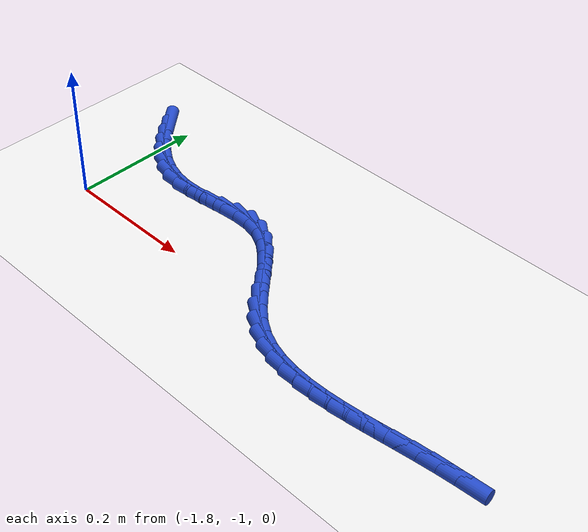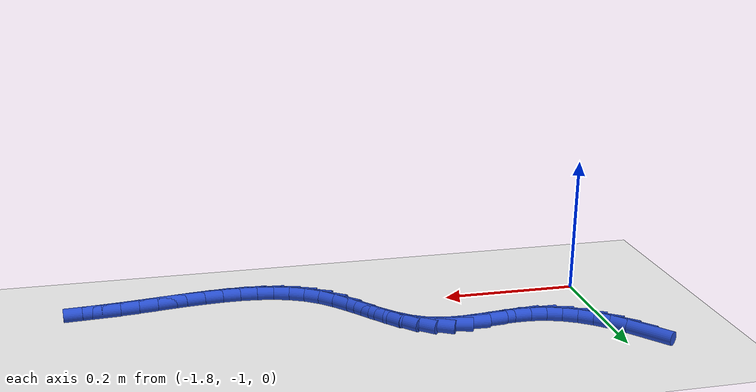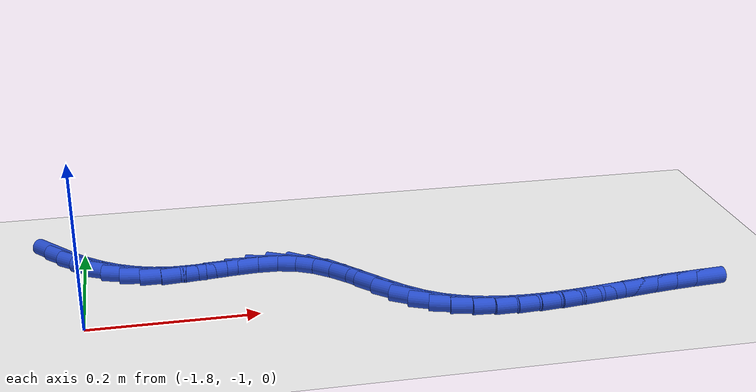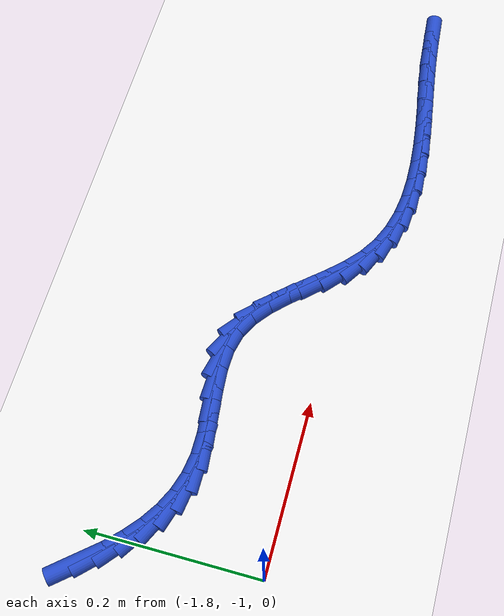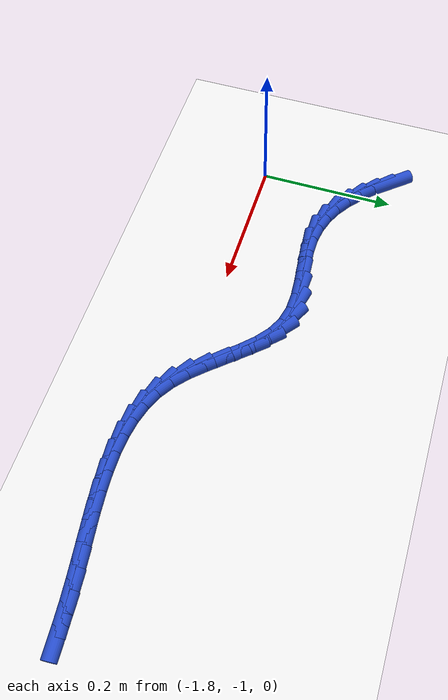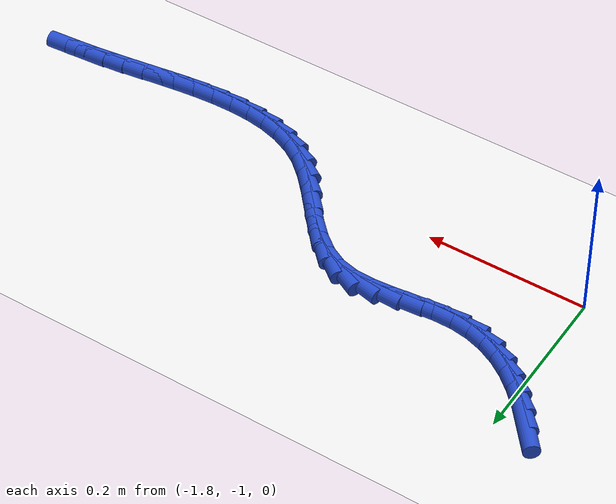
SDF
<sdf version="1.6">
 <world name="default">
  <model name="ground_plane">
   <static>1</static>
   <link name="link">
    <collision name="collision">
     <geometry><plane><normal>0 0 1</normal><size>100 100</size></plane></geometry>
     <surface><friction><ode><mu>100</mu><mu2>50</mu2></ode></friction></surface>
    </collision>
    <visual name="visual">
     <cast_shadows>0</cast_shadows>
     <geometry><plane><normal>0 0 1</normal><size>100 100</size></plane></geometry>
     <material>
      <script><uri>file://media/materials/scripts/gazebo.material</uri><name>Gazebo/WhiteGlow</name></script>
     </material>
    </visual>
   </link>
  </model>
  <model name="line">
   <link name="link_169">
    <pose>-1.8310161625493722 -0.8116855752897663 0.01 0 1.57 -0.8751986220896968</pose>
    <collision name="collision">
     <geometry><cylinder><radius>0.01</radius><length>0.08</length></cylinder></geometry>
    </collision>
    <visual name="visual">
     <material>
      <script><name>Gazebo/Blue</name><uri>file://media/materials/scripts/gazebo.material</uri></script>
     </material>
     <geometry><cylinder><radius>0.01</radius><length>0.08</length></cylinder></geometry>
    </visual>
   </link>
   <link name="link_170">
    <pose>-1.8146421535079265 -0.8313000851181753 0.01 0 1.57 -0.7985323248890216</pose>
    <collision name="collision">
     <geometry><cylinder><radius>0.01</radius><length>0.08</length></cylinder></geometry>
    </collision>
    <visual name="visual">
     <material>
      <script><name>Gazebo/Blue</name><uri>file://media/materials/scripts/gazebo.material</uri></script>
     </material>
     <geometry><cylinder><radius>0.01</radius><length>0.08</length></cylinder></geometry>
    </visual>
   </link>
   <link name="link_171">
    <pose>-1.7974560371738915 -0.8489436869013285 0.01 0 1.57 -0.7033649384889715</pose>
    <collision name="collision">
     <geometry><cylinder><radius>0.01</radius><length>0.08</length></cylinder></geometry>
    </collision>
    <visual name="visual">
     <material>
      <script><name>Gazebo/Blue</name><uri>file://media/materials/scripts/gazebo.material</uri></script>
     </material>
     <geometry><cylinder><radius>0.01</radius><length>0.08</length></cylinder></geometry>
    </visual>
   </link>
   <link name="link_172">
    <pose>-1.7793157449066048 -0.8643276877415662 0.01 0 1.57 -0.5884109376365739</pose>
    <collision name="collision">
     <geometry><cylinder><radius>0.01</radius><length>0.08</length></cylinder></geometry>
    </collision>
    <visual name="visual">
     <material>
      <script><name>Gazebo/Blue</name><uri>file://media/materials/scripts/gazebo.material</uri></script>
     </material>
     <geometry><cylinder><radius>0.01</radius><length>0.08</length></cylinder></geometry>
    </visual>
   </link>
   <link name="link_173">
    <pose>-1.7600792080654055 -0.8771633947412262 0.01 0 1.57 -0.4542774350652462</pose>
    <collision name="collision">
     <geometry><cylinder><radius>0.01</radius><length>0.08</length></cylinder></geometry>
    </collision>
    <visual name="visual">
     <material>
      <script><name>Gazebo/Blue</name><uri>file://media/materials/scripts/gazebo.material</uri></script>
     </material>
     <geometry><cylinder><radius>0.01</radius><length>0.08</length></cylinder></geometry>
    </visual>
   </link>
   <link name="link_174">
    <pose>-1.7396043580096303 -0.887162115002649 0.01 0 1.57 -0.3046879972945297</pose>
    <collision name="collision">
     <geometry><cylinder><radius>0.01</radius><length>0.08</length></cylinder></geometry>
    </collision>
    <visual name="visual">
     <material>
      <script><name>Gazebo/Blue</name><uri>file://media/materials/scripts/gazebo.material</uri></script>
     </material>
     <geometry><cylinder><radius>0.01</radius><length>0.08</length></cylinder></geometry>
    </visual>
   </link>
   <link name="link_175">
    <pose>-1.7177491260986173 -0.8940351556281728 0.01 0 1.57 -0.1468819447857352</pose>
    <collision name="collision">
     <geometry><cylinder><radius>0.01</radius><length>0.08</length></cylinder></geometry>
    </collision>
    <visual name="visual">
     <material>
      <script><name>Gazebo/Blue</name><uri>file://media/materials/scripts/gazebo.material</uri></script>
     </material>
     <geometry><cylinder><radius>0.01</radius><length>0.08</length></cylinder></geometry>
    </visual>
   </link>
   <link name="link_176">
    <pose>-1.6943714436917037 -0.8974938237201374 0.01 0 1.57 0.002426265896516959</pose>
    <collision name="collision">
     <geometry><cylinder><radius>0.01</radius><length>0.08</length></cylinder></geometry>
    </collision>
    <visual name="visual">
     <material>
      <script><name>Gazebo/Blue</name><uri>file://media/materials/scripts/gazebo.material</uri></script>
     </material>
     <geometry><cylinder><radius>0.01</radius><length>0.08</length></cylinder></geometry>
    </visual>
   </link>
   <link name="link_177">
    <pose>-1.6694081136845298 -0.897433255925028 0.01 0 1.57 0.09184846541032217</pose>
    <collision name="collision">
     <geometry><cylinder><radius>0.01</radius><length>0.08</length></cylinder></geometry>
    </collision>
    <visual name="visual">
     <material>
      <script><name>Gazebo/Blue</name><uri>file://media/materials/scripts/gazebo.material</uri></script>
     </material>
     <geometry><cylinder><radius>0.01</radius><length>0.08</length></cylinder></geometry>
    </visual>
   </link>
   <link name="link_178">
    <pose>-1.6433469358334134 -0.8950328228027895 0.01 0 1.57 0.11349019290783788</pose>
    <collision name="collision">
     <geometry><cylinder><radius>0.01</radius><length>0.08</length></cylinder></geometry>
    </collision>
    <visual name="visual">
     <material>
      <script><name>Gazebo/Blue</name><uri>file://media/materials/scripts/gazebo.material</uri></script>
     </material>
     <geometry><cylinder><radius>0.01</radius><length>0.08</length></cylinder></geometry>
    </visual>
   </link>
   <link name="link_179">
    <pose>-1.6169107109324037 -0.8920196227207008 0.01 0 1.57 0.07258227087562695</pose>
    <collision name="collision">
     <geometry><cylinder><radius>0.01</radius><length>0.08</length></cylinder></geometry>
    </collision>
    <visual name="visual">
     <material>
      <script><name>Gazebo/Blue</name><uri>file://media/materials/scripts/gazebo.material</uri></script>
     </material>
     <geometry><cylinder><radius>0.01</radius><length>0.08</length></cylinder></geometry>
    </visual>
   </link>
   <link name="link_180">
    <pose>-1.5908231148556573 -0.8901227936358012 0.01 0 1.57 -0.037905832898348917</pose>
    <collision name="collision">
     <geometry><cylinder><radius>0.01</radius><length>0.08</length></cylinder></geometry>
    </collision>
    <visual name="visual">
     <material>
      <script><name>Gazebo/Blue</name><uri>file://media/materials/scripts/gazebo.material</uri></script>
     </material>
     <geometry><cylinder><radius>0.01</radius><length>0.08</length></cylinder></geometry>
    </visual>
   </link>
   <link name="link_181">
    <pose>-1.5658078234773343 -0.8910714735051305 0.01 0 1.57 -0.23343138404523553</pose>
    <collision name="collision">
     <geometry><cylinder><radius>0.01</radius><length>0.08</length></cylinder></geometry>
    </collision>
    <visual name="visual">
     <material>
      <script><name>Gazebo/Blue</name><uri>file://media/materials/scripts/gazebo.material</uri></script>
     </material>
     <geometry><cylinder><radius>0.01</radius><length>0.08</length></cylinder></geometry>
    </visual>
   </link>
   <link name="link_182">
    <pose>-1.542587541179382 -0.8965924622734724 0.01 0 1.57 -0.48222319047165535</pose>
    <collision name="collision">
     <geometry><cylinder><radius>0.01</radius><length>0.08</length></cylinder></geometry>
    </collision>
    <visual name="visual">
     <material>
      <script><name>Gazebo/Blue</name><uri>file://media/materials/scripts/gazebo.material</uri></script>
     </material>
     <geometry><cylinder><radius>0.01</radius><length>0.08</length></cylinder></geometry>
    </visual>
   </link>
   <link name="link_183">
    <pose>-1.5215492974192268 -0.9076047180116247 0.01 0 1.57 -0.6747229096871694</pose>
    <collision name="collision">
     <geometry><cylinder><radius>0.01</radius><length>0.08</length></cylinder></geometry>
    </collision>
    <visual name="visual">
     <material>
      <script><name>Gazebo/Blue</name><uri>file://media/materials/scripts/gazebo.material</uri></script>
     </material>
     <geometry><cylinder><radius>0.01</radius><length>0.08</length></cylinder></geometry>
    </visual>
   </link>
   <link name="link_184">
    <pose>-1.5022544201210464 -0.9230400492440545 0.01 0 1.57 -0.7956504627863202</pose>
    <collision name="collision">
     <geometry><cylinder><radius>0.01</radius><length>0.08</length></cylinder></geometry>
    </collision>
    <visual name="visual">
     <material>
      <script><name>Gazebo/Blue</name><uri>file://media/materials/scripts/gazebo.material</uri></script>
     </material>
     <geometry><cylinder><radius>0.01</radius><length>0.08</length></cylinder></geometry>
    </visual>
   </link>
   <link name="link_185">
    <pose>-1.48413955832405 -0.9415302098390159 0.01 0 1.57 -0.8563749736993875</pose>
    <collision name="collision">
     <geometry><cylinder><radius>0.01</radius><length>0.08</length></cylinder></geometry>
    </collision>
    <visual name="visual">
     <material>
      <script><name>Gazebo/Blue</name><uri>file://media/materials/scripts/gazebo.material</uri></script>
     </material>
     <geometry><cylinder><radius>0.01</radius><length>0.08</length></cylinder></geometry>
    </visual>
   </link>
   <link name="link_186">
    <pose>-1.4666413610674496 -0.9617069536647607 0.01 0 1.57 -0.8656209860722797</pose>
    <collision name="collision">
     <geometry><cylinder><radius>0.01</radius><length>0.08</length></cylinder></geometry>
    </collision>
    <visual name="visual">
     <material>
      <script><name>Gazebo/Blue</name><uri>file://media/materials/scripts/gazebo.material</uri></script>
     </material>
     <geometry><cylinder><radius>0.01</radius><length>0.08</length></cylinder></geometry>
    </visual>
   </link>
   <link name="link_187">
    <pose>-1.4491964773904542 -0.9822020345895427 0.01 0 1.57 -0.8252232752488093</pose>
    <collision name="collision">
     <geometry><cylinder><radius>0.01</radius><length>0.08</length></cylinder></geometry>
    </collision>
    <visual name="visual">
     <material>
      <script><name>Gazebo/Blue</name><uri>file://media/materials/scripts/gazebo.material</uri></script>
     </material>
     <geometry><cylinder><radius>0.01</radius><length>0.08</length></cylinder></geometry>
    </visual>
   </link>
   <link name="link_188">
    <pose>-1.431241556332276 -1.0016472064816135 0.01 0 1.57 -0.7299489026398324</pose>
    <collision name="collision">
     <geometry><cylinder><radius>0.01</radius><length>0.08</length></cylinder></geometry>
    </collision>
    <visual name="visual">
     <material>
      <script><name>Gazebo/Blue</name><uri>file://media/materials/scripts/gazebo.material</uri></script>
     </material>
     <geometry><cylinder><radius>0.01</radius><length>0.08</length></cylinder></geometry>
    </visual>
   </link>
   <link name="link_189">
    <pose>-1.4122132469321238 -1.0186742232092272 0.01 0 1.57 -0.579378953272231</pose>
    <collision name="collision">
     <geometry><cylinder><radius>0.01</radius><length>0.08</length></cylinder></geometry>
    </collision>
    <visual name="visual">
     <material>
      <script><name>Gazebo/Blue</name><uri>file://media/materials/scripts/gazebo.material</uri></script>
     </material>
     <geometry><cylinder><radius>0.01</radius><length>0.08</length></cylinder></geometry>
    </visual>
   </link>
   <link name="link_190">
    <pose>-1.3916414284902303 -1.0321339768809823 0.01 0 1.57 -0.42181751627041725</pose>
    <collision name="collision">
     <geometry><cylinder><radius>0.01</radius><length>0.08</length></cylinder></geometry>
    </collision>
    <visual name="visual">
     <material>
      <script><name>Gazebo/Blue</name><uri>file://media/materials/scripts/gazebo.material</uri></script>
     </material>
     <geometry><cylinder><radius>0.01</radius><length>0.08</length></cylinder></geometry>
    </visual>
   </link>
   <link name="link_191">
    <pose>-1.3695532311225016 -1.0420461503775442 0.01 0 1.57 -0.281579470436139</pose>
    <collision name="collision">
     <geometry><cylinder><radius>0.01</radius><length>0.08</length></cylinder></geometry>
    </collision>
    <visual name="visual">
     <material>
      <script><name>Gazebo/Blue</name><uri>file://media/materials/scripts/gazebo.material</uri></script>
     </material>
     <geometry><cylinder><radius>0.01</radius><length>0.08</length></cylinder></geometry>
    </visual>
   </link>
   <link name="link_192">
    <pose>-1.3461408969931326 -1.0488185233555116 0.01 0 1.57 -0.16316286779028702</pose>
    <collision name="collision">
     <geometry><cylinder><radius>0.01</radius><length>0.08</length></cylinder></geometry>
    </collision>
    <visual name="visual">
     <material>
      <script><name>Gazebo/Blue</name><uri>file://media/materials/scripts/gazebo.material</uri></script>
     </material>
     <geometry><cylinder><radius>0.01</radius><length>0.08</length></cylinder></geometry>
    </visual>
   </link>
   <link name="link_193">
    <pose>-1.3215967776526172 -1.052859132584582 0.01 0 1.57 -0.06727051181871462</pose>
    <collision name="collision">
     <geometry><cylinder><radius>0.01</radius><length>0.08</length></cylinder></geometry>
    </collision>
    <visual name="visual">
     <material>
      <script><name>Gazebo/Blue</name><uri>file://media/materials/scripts/gazebo.material</uri></script>
     </material>
     <geometry><cylinder><radius>0.01</radius><length>0.08</length></cylinder></geometry>
    </visual>
   </link>
   <link name="link_194">
    <pose>-1.2961132246514484 -1.0545760148344516 0.01 0 1.57 0.007579082706188331</pose>
    <collision name="collision">
     <geometry><cylinder><radius>0.01</radius><length>0.08</length></cylinder></geometry>
    </collision>
    <visual name="visual">
     <material>
      <script><name>Gazebo/Blue</name><uri>file://media/materials/scripts/gazebo.material</uri></script>
     </material>
     <geometry><cylinder><radius>0.01</radius><length>0.08</length></cylinder></geometry>
    </visual>
   </link>
   <link name="link_195">
    <pose>-1.2698825895401211 -1.0543772068748174 0.01 0 1.57 0.0636227370327877</pose>
    <collision name="collision">
     <geometry><cylinder><radius>0.01</radius><length>0.08</length></cylinder></geometry>
    </collision>
    <visual name="visual">
     <material>
      <script><name>Gazebo/Blue</name><uri>file://media/materials/scripts/gazebo.material</uri></script>
     </material>
     <geometry><cylinder><radius>0.01</radius><length>0.08</length></cylinder></geometry>
    </visual>
   </link>
   <link name="link_196">
    <pose>-1.2430972238691282 -1.0526707454753768 0.01 0 1.57 0.10299744390642508</pose>
    <collision name="collision">
     <geometry><cylinder><radius>0.01</radius><length>0.08</length></cylinder></geometry>
    </collision>
    <visual name="visual">
     <material>
      <script><name>Gazebo/Blue</name><uri>file://media/materials/scripts/gazebo.material</uri></script>
     </material>
     <geometry><cylinder><radius>0.01</radius><length>0.08</length></cylinder></geometry>
    </visual>
   </link>
   <link name="link_197">
    <pose>-1.2159494791889645 -1.0498646674058256 0.01 0 1.57 0.12734315045960123</pose>
    <collision name="collision">
     <geometry><cylinder><radius>0.01</radius><length>0.08</length></cylinder></geometry>
    </collision>
    <visual name="visual">
     <material>
      <script><name>Gazebo/Blue</name><uri>file://media/materials/scripts/gazebo.material</uri></script>
     </material>
     <geometry><cylinder><radius>0.01</radius><length>0.08</length></cylinder></geometry>
    </visual>
   </link>
   <link name="link_198">
    <pose>-1.188631707050122 -1.0463670094358613 0.01 0 1.57 0.1376525681378432</pose>
    <collision name="collision">
     <geometry><cylinder><radius>0.01</radius><length>0.08</length></cylinder></geometry>
    </collision>
    <visual name="visual">
     <material>
      <script><name>Gazebo/Blue</name><uri>file://media/materials/scripts/gazebo.material</uri></script>
     </material>
     <geometry><cylinder><radius>0.01</radius><length>0.08</length></cylinder></geometry>
    </visual>
   </link>
   <link name="link_199">
    <pose>-1.1613362590030971 -1.0425858083351804 0.01 0 1.57 0.13421785592077284</pose>
    <collision name="collision">
     <geometry><cylinder><radius>0.01</radius><length>0.08</length></cylinder></geometry>
    </collision>
    <visual name="visual">
     <material>
      <script><name>Gazebo/Blue</name><uri>file://media/materials/scripts/gazebo.material</uri></script>
     </material>
     <geometry><cylinder><radius>0.01</radius><length>0.08</length></cylinder></geometry>
    </visual>
   </link>
   <link name="link_200">
    <pose>-1.1342554865983812 -1.03892910087348 0.01 0 1.57 0.11708737096516975</pose>
    <collision name="collision">
     <geometry><cylinder><radius>0.01</radius><length>0.08</length></cylinder></geometry>
    </collision>
    <visual name="visual">
     <material>
      <script><name>Gazebo/Blue</name><uri>file://media/materials/scripts/gazebo.material</uri></script>
     </material>
     <geometry><cylinder><radius>0.01</radius><length>0.08</length></cylinder></geometry>
    </visual>
   </link>
   <link name="link_201">
    <pose>-1.1075739795834743 -1.035790678219794 0.01 0 1.57 0.09390283714602064</pose>
    <collision name="collision">
     <geometry><cylinder><radius>0.01</radius><length>0.08</length></cylinder></geometry>
    </collision>
    <visual name="visual">
     <material>
      <script><name>Gazebo/Blue</name><uri>file://media/materials/scripts/gazebo.material</uri></script>
     </material>
     <geometry><cylinder><radius>0.01</radius><length>0.08</length></cylinder></geometry>
    </visual>
   </link>
   <link name="link_202">
    <pose>-1.0813433563030312 -1.0333202828980879 0.01 0 1.57 0.07176803508131273</pose>
    <collision name="collision">
     <geometry><cylinder><radius>0.01</radius><length>0.08</length></cylinder></geometry>
    </collision>
    <visual name="visual">
     <material>
      <script><name>Gazebo/Blue</name><uri>file://media/materials/scripts/gazebo.material</uri></script>
     </material>
     <geometry><cylinder><radius>0.01</radius><length>0.08</length></cylinder></geometry>
    </visual>
   </link>
  </model>
 </world>
</sdf>
